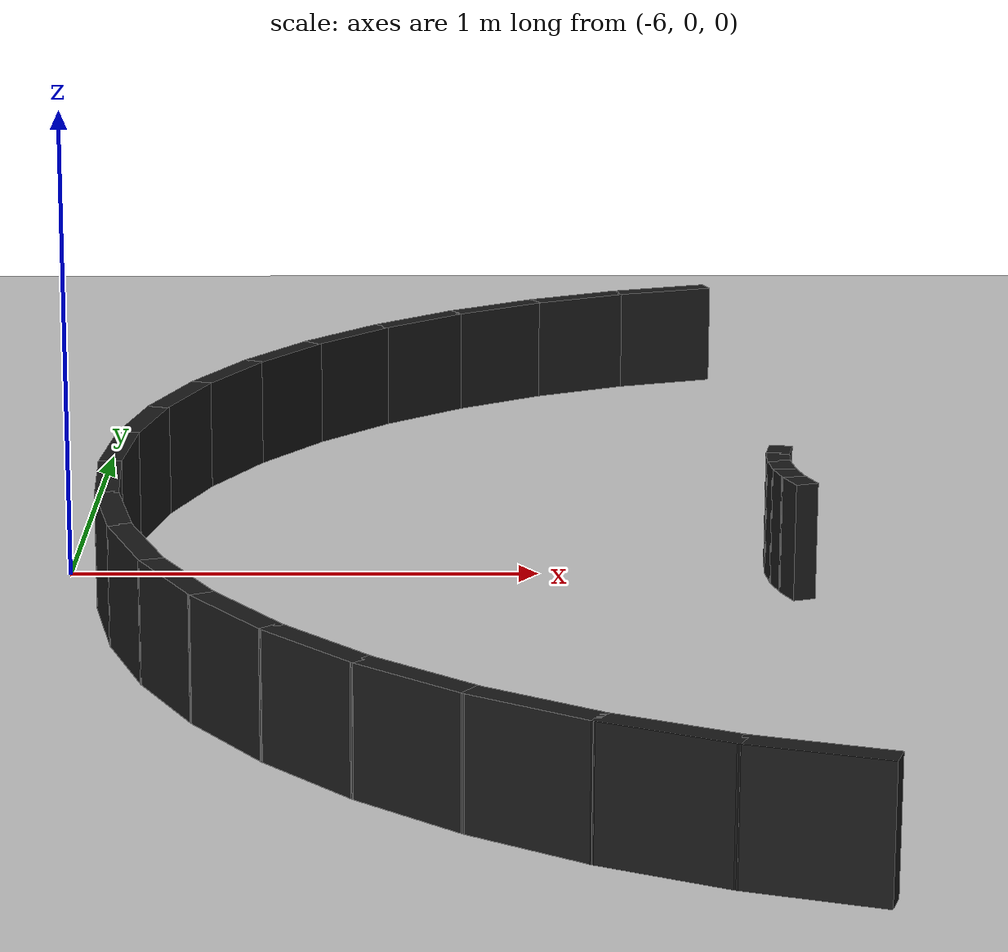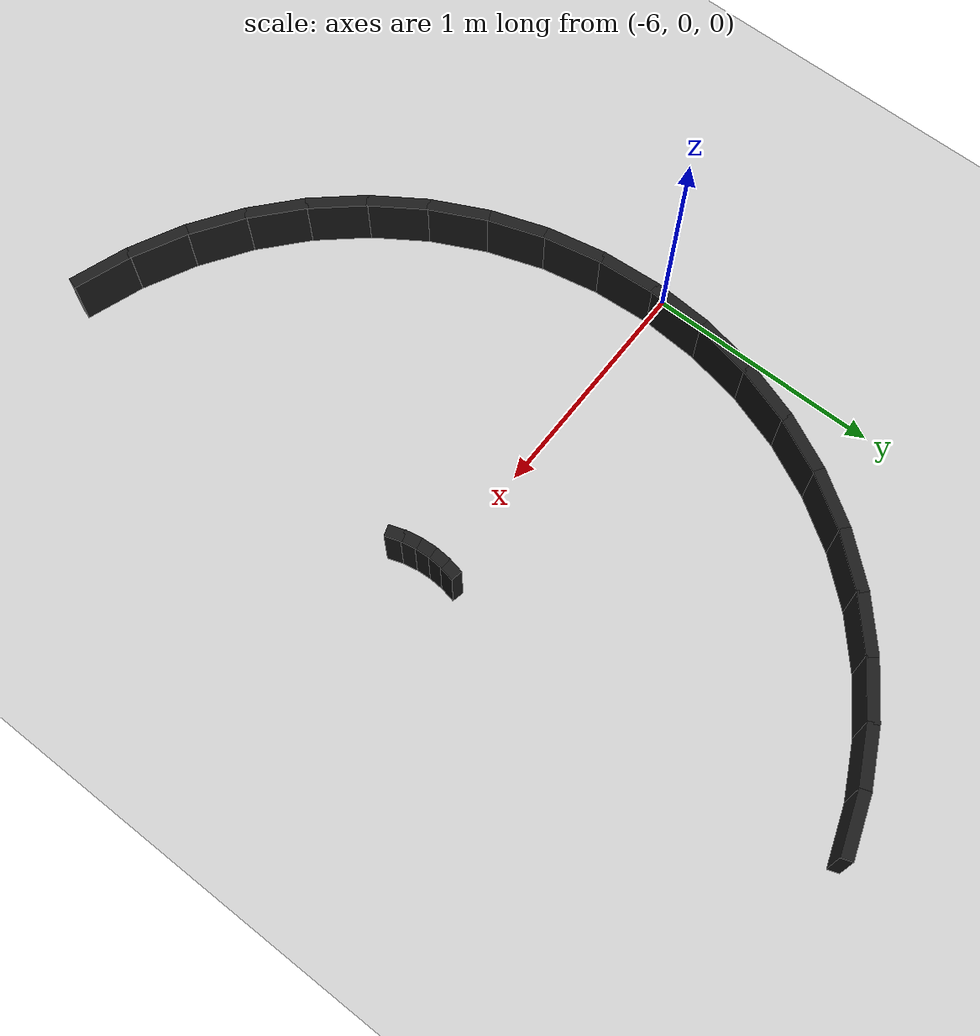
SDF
<sdf version="1.6">
 <world name="button_track">
  <include><uri>model://sun</uri></include>
  <include><uri>model://ground_plane</uri></include>
  <model name="wall_left_outer_50">
   <static>true</static>
   <pose>-4.613020 -1.805898 0.125000 0 0 2.814343</pose>
   <link name="link">
    <collision name="collision">
     <geometry><box><size>0.259997 0.050000 0.250000</size></box></geometry>
    </collision>
    <visual name="visual">
     <geometry><box><size>0.259997 0.050000 0.250000</size></box></geometry>
     <material>
      <ambient>0.1 0.1 0.1 1</ambient>
      <diffuse>0.1 0.1 0.1 1</diffuse>
      <specular>0.2 0.2 0.2 1</specular>
     </material>
    </visual>
   </link>
  </model>
  <model name="wall_left_outer_51">
   <static>true</static>
   <pose>-4.843492 -1.710433 0.125000 0 0 2.683444</pose>
   <link name="link">
    <collision name="collision">
     <geometry><box><size>0.259997 0.050000 0.250000</size></box></geometry>
    </collision>
    <visual name="visual">
     <geometry><box><size>0.259997 0.050000 0.250000</size></box></geometry>
     <material>
      <ambient>0.1 0.1 0.1 1</ambient>
      <diffuse>0.1 0.1 0.1 1</diffuse>
      <specular>0.2 0.2 0.2 1</specular>
     </material>
    </visual>
   </link>
  </model>
  <model name="wall_left_outer_52">
   <static>true</static>
   <pose>-5.059532 -1.585702 0.125000 0 0 2.552544</pose>
   <link name="link">
    <collision name="collision">
     <geometry><box><size>0.259997 0.050000 0.250000</size></box></geometry>
    </collision>
    <visual name="visual">
     <geometry><box><size>0.259997 0.050000 0.250000</size></box></geometry>
     <material>
      <ambient>0.1 0.1 0.1 1</ambient>
      <diffuse>0.1 0.1 0.1 1</diffuse>
      <specular>0.2 0.2 0.2 1</specular>
     </material>
    </visual>
   </link>
  </model>
  <model name="wall_left_outer_53">
   <static>true</static>
   <pose>-5.257444 -1.433840 0.125000 0 0 2.421644</pose>
   <link name="link">
    <collision name="collision">
     <geometry><box><size>0.259997 0.050000 0.250000</size></box></geometry>
    </collision>
    <visual name="visual">
     <geometry><box><size>0.259997 0.050000 0.250000</size></box></geometry>
     <material>
      <ambient>0.1 0.1 0.1 1</ambient>
      <diffuse>0.1 0.1 0.1 1</diffuse>
      <specular>0.2 0.2 0.2 1</specular>
     </material>
    </visual>
   </link>
  </model>
  <model name="wall_left_outer_54">
   <static>true</static>
   <pose>-5.433840 -1.257444 0.125000 0 0 2.290745</pose>
   <link name="link">
    <collision name="collision">
     <geometry><box><size>0.259997 0.050000 0.250000</size></box></geometry>
    </collision>
    <visual name="visual">
     <geometry><box><size>0.259997 0.050000 0.250000</size></box></geometry>
     <material>
      <ambient>0.1 0.1 0.1 1</ambient>
      <diffuse>0.1 0.1 0.1 1</diffuse>
      <specular>0.2 0.2 0.2 1</specular>
     </material>
    </visual>
   </link>
  </model>
  <model name="wall_left_outer_55">
   <static>true</static>
   <pose>-5.585702 -1.059532 0.125000 0 0 2.159845</pose>
   <link name="link">
    <collision name="collision">
     <geometry><box><size>0.259997 0.050000 0.250000</size></box></geometry>
    </collision>
    <visual name="visual">
     <geometry><box><size>0.259997 0.050000 0.250000</size></box></geometry>
     <material>
      <ambient>0.1 0.1 0.1 1</ambient>
      <diffuse>0.1 0.1 0.1 1</diffuse>
      <specular>0.2 0.2 0.2 1</specular>
     </material>
    </visual>
   </link>
  </model>
  <model name="wall_left_outer_56">
   <static>true</static>
   <pose>-5.710433 -0.843492 0.125000 0 0 2.028945</pose>
   <link name="link">
    <collision name="collision">
     <geometry><box><size>0.259997 0.050000 0.250000</size></box></geometry>
    </collision>
    <visual name="visual">
     <geometry><box><size>0.259997 0.050000 0.250000</size></box></geometry>
     <material>
      <ambient>0.1 0.1 0.1 1</ambient>
      <diffuse>0.1 0.1 0.1 1</diffuse>
      <specular>0.2 0.2 0.2 1</specular>
     </material>
    </visual>
   </link>
  </model>
  <model name="wall_left_outer_57">
   <static>true</static>
   <pose>-5.805898 -0.613020 0.125000 0 0 1.898046</pose>
   <link name="link">
    <collision name="collision">
     <geometry><box><size>0.259997 0.050000 0.250000</size></box></geometry>
    </collision>
    <visual name="visual">
     <geometry><box><size>0.259997 0.050000 0.250000</size></box></geometry>
     <material>
      <ambient>0.1 0.1 0.1 1</ambient>
      <diffuse>0.1 0.1 0.1 1</diffuse>
      <specular>0.2 0.2 0.2 1</specular>
     </material>
    </visual>
   </link>
  </model>
  <model name="wall_left_outer_58">
   <static>true</static>
   <pose>-5.870463 -0.372058 0.125000 0 0 1.767146</pose>
   <link name="link">
    <collision name="collision">
     <geometry><box><size>0.259997 0.050000 0.250000</size></box></geometry>
    </collision>
    <visual name="visual">
     <geometry><box><size>0.259997 0.050000 0.250000</size></box></geometry>
     <material>
      <ambient>0.1 0.1 0.1 1</ambient>
      <diffuse>0.1 0.1 0.1 1</diffuse>
      <specular>0.2 0.2 0.2 1</specular>
     </material>
    </visual>
   </link>
  </model>
  <model name="wall_left_outer_59">
   <static>true</static>
   <pose>-5.903025 -0.124731 0.125000 0 0 1.636246</pose>
   <link name="link">
    <collision name="collision">
     <geometry><box><size>0.259997 0.050000 0.250000</size></box></geometry>
    </collision>
    <visual name="visual">
     <geometry><box><size>0.259997 0.050000 0.250000</size></box></geometry>
     <material>
      <ambient>0.1 0.1 0.1 1</ambient>
      <diffuse>0.1 0.1 0.1 1</diffuse>
      <specular>0.2 0.2 0.2 1</specular>
     </material>
    </visual>
   </link>
  </model>
  <model name="wall_left_outer_60">
   <static>true</static>
   <pose>-5.903025 0.124731 0.125000 0 0 1.505346</pose>
   <link name="link">
    <collision name="collision">
     <geometry><box><size>0.259997 0.050000 0.250000</size></box></geometry>
    </collision>
    <visual name="visual">
     <geometry><box><size>0.259997 0.050000 0.250000</size></box></geometry>
     <material>
      <ambient>0.1 0.1 0.1 1</ambient>
      <diffuse>0.1 0.1 0.1 1</diffuse>
      <specular>0.2 0.2 0.2 1</specular>
     </material>
    </visual>
   </link>
  </model>
  <model name="wall_left_outer_61">
   <static>true</static>
   <pose>-5.870463 0.372058 0.125000 0 0 1.374447</pose>
   <link name="link">
    <collision name="collision">
     <geometry><box><size>0.259997 0.050000 0.250000</size></box></geometry>
    </collision>
    <visual name="visual">
     <geometry><box><size>0.259997 0.050000 0.250000</size></box></geometry>
     <material>
      <ambient>0.1 0.1 0.1 1</ambient>
      <diffuse>0.1 0.1 0.1 1</diffuse>
      <specular>0.2 0.2 0.2 1</specular>
     </material>
    </visual>
   </link>
  </model>
  <model name="wall_left_outer_62">
   <static>true</static>
   <pose>-5.805898 0.613020 0.125000 0 0 1.243547</pose>
   <link name="link">
    <collision name="collision">
     <geometry><box><size>0.259997 0.050000 0.250000</size></box></geometry>
    </collision>
    <visual name="visual">
     <geometry><box><size>0.259997 0.050000 0.250000</size></box></geometry>
     <material>
      <ambient>0.1 0.1 0.1 1</ambient>
      <diffuse>0.1 0.1 0.1 1</diffuse>
      <specular>0.2 0.2 0.2 1</specular>
     </material>
    </visual>
   </link>
  </model>
  <model name="wall_left_outer_63">
   <static>true</static>
   <pose>-5.710433 0.843492 0.125000 0 0 1.112647</pose>
   <link name="link">
    <collision name="collision">
     <geometry><box><size>0.259997 0.050000 0.250000</size></box></geometry>
    </collision>
    <visual name="visual">
     <geometry><box><size>0.259997 0.050000 0.250000</size></box></geometry>
     <material>
      <ambient>0.1 0.1 0.1 1</ambient>
      <diffuse>0.1 0.1 0.1 1</diffuse>
      <specular>0.2 0.2 0.2 1</specular>
     </material>
    </visual>
   </link>
  </model>
  <model name="wall_left_outer_64">
   <static>true</static>
   <pose>-5.585702 1.059532 0.125000 0 0 0.981748</pose>
   <link name="link">
    <collision name="collision">
     <geometry><box><size>0.259997 0.050000 0.250000</size></box></geometry>
    </collision>
    <visual name="visual">
     <geometry><box><size>0.259997 0.050000 0.250000</size></box></geometry>
     <material>
      <ambient>0.1 0.1 0.1 1</ambient>
      <diffuse>0.1 0.1 0.1 1</diffuse>
      <specular>0.2 0.2 0.2 1</specular>
     </material>
    </visual>
   </link>
  </model>
  <model name="wall_left_outer_65">
   <static>true</static>
   <pose>-5.433840 1.257444 0.125000 0 0 0.850848</pose>
   <link name="link">
    <collision name="collision">
     <geometry><box><size>0.259997 0.050000 0.250000</size></box></geometry>
    </collision>
    <visual name="visual">
     <geometry><box><size>0.259997 0.050000 0.250000</size></box></geometry>
     <material>
      <ambient>0.1 0.1 0.1 1</ambient>
      <diffuse>0.1 0.1 0.1 1</diffuse>
      <specular>0.2 0.2 0.2 1</specular>
     </material>
    </visual>
   </link>
  </model>
  <model name="wall_left_outer_66">
   <static>true</static>
   <pose>-5.257444 1.433840 0.125000 0 0 0.719948</pose>
   <link name="link">
    <collision name="collision">
     <geometry><box><size>0.259997 0.050000 0.250000</size></box></geometry>
    </collision>
    <visual name="visual">
     <geometry><box><size>0.259997 0.050000 0.250000</size></box></geometry>
     <material>
      <ambient>0.1 0.1 0.1 1</ambient>
      <diffuse>0.1 0.1 0.1 1</diffuse>
      <specular>0.2 0.2 0.2 1</specular>
     </material>
    </visual>
   </link>
  </model>
  <model name="wall_left_outer_67">
   <static>true</static>
   <pose>-5.059532 1.585702 0.125000 0 0 0.589049</pose>
   <link name="link">
    <collision name="collision">
     <geometry><box><size>0.259997 0.050000 0.250000</size></box></geometry>
    </collision>
    <visual name="visual">
     <geometry><box><size>0.259997 0.050000 0.250000</size></box></geometry>
     <material>
      <ambient>0.1 0.1 0.1 1</ambient>
      <diffuse>0.1 0.1 0.1 1</diffuse>
      <specular>0.2 0.2 0.2 1</specular>
     </material>
    </visual>
   </link>
  </model>
  <model name="wall_left_outer_68">
   <static>true</static>
   <pose>-4.843492 1.710433 0.125000 0 0 0.458149</pose>
   <link name="link">
    <collision name="collision">
     <geometry><box><size>0.259997 0.050000 0.250000</size></box></geometry>
    </collision>
    <visual name="visual">
     <geometry><box><size>0.259997 0.050000 0.250000</size></box></geometry>
     <material>
      <ambient>0.1 0.1 0.1 1</ambient>
      <diffuse>0.1 0.1 0.1 1</diffuse>
      <specular>0.2 0.2 0.2 1</specular>
     </material>
    </visual>
   </link>
  </model>
  <model name="wall_left_outer_69">
   <static>true</static>
   <pose>-4.613020 1.805898 0.125000 0 0 0.327249</pose>
   <link name="link">
    <collision name="collision">
     <geometry><box><size>0.259997 0.050000 0.250000</size></box></geometry>
    </collision>
    <visual name="visual">
     <geometry><box><size>0.259997 0.050000 0.250000</size></box></geometry>
     <material>
      <ambient>0.1 0.1 0.1 1</ambient>
      <diffuse>0.1 0.1 0.1 1</diffuse>
      <specular>0.2 0.2 0.2 1</specular>
     </material>
    </visual>
   </link>
  </model>
  <model name="wall_left_inner_81">
   <static>true</static>
   <pose>-4.461868 -0.156783 0.125000 0 0 1.898046</pose>
   <link name="link">
    <collision name="collision">
     <geometry><box><size>0.073938 0.050000 0.250000</size></box></geometry>
    </collision>
    <visual name="visual">
     <geometry><box><size>0.073938 0.050000 0.250000</size></box></geometry>
     <material>
      <ambient>0.1 0.1 0.1 1</ambient>
      <diffuse>0.1 0.1 0.1 1</diffuse>
      <specular>0.2 0.2 0.2 1</specular>
     </material>
    </visual>
   </link>
  </model>
  <model name="wall_left_inner_82">
   <static>true</static>
   <pose>-4.478381 -0.095156 0.125000 0 0 1.767146</pose>
   <link name="link">
    <collision name="collision">
     <geometry><box><size>0.073938 0.050000 0.250000</size></box></geometry>
    </collision>
    <visual name="visual">
     <geometry><box><size>0.073938 0.050000 0.250000</size></box></geometry>
     <material>
      <ambient>0.1 0.1 0.1 1</ambient>
      <diffuse>0.1 0.1 0.1 1</diffuse>
      <specular>0.2 0.2 0.2 1</specular>
     </material>
    </visual>
   </link>
  </model>
  <model name="wall_left_inner_83">
   <static>true</static>
   <pose>-4.486709 -0.031901 0.125000 0 0 1.636246</pose>
   <link name="link">
    <collision name="collision">
     <geometry><box><size>0.073938 0.050000 0.250000</size></box></geometry>
    </collision>
    <visual name="visual">
     <geometry><box><size>0.073938 0.050000 0.250000</size></box></geometry>
     <material>
      <ambient>0.1 0.1 0.1 1</ambient>
      <diffuse>0.1 0.1 0.1 1</diffuse>
      <specular>0.2 0.2 0.2 1</specular>
     </material>
    </visual>
   </link>
  </model>
  <model name="wall_left_inner_84">
   <static>true</static>
   <pose>-4.486709 0.031901 0.125000 0 0 1.505346</pose>
   <link name="link">
    <collision name="collision">
     <geometry><box><size>0.073938 0.050000 0.250000</size></box></geometry>
    </collision>
    <visual name="visual">
     <geometry><box><size>0.073938 0.050000 0.250000</size></box></geometry>
     <material>
      <ambient>0.1 0.1 0.1 1</ambient>
      <diffuse>0.1 0.1 0.1 1</diffuse>
      <specular>0.2 0.2 0.2 1</specular>
     </material>
    </visual>
   </link>
  </model>
  <model name="wall_left_inner_85">
   <static>true</static>
   <pose>-4.478381 0.095156 0.125000 0 0 1.374447</pose>
   <link name="link">
    <collision name="collision">
     <geometry><box><size>0.073938 0.050000 0.250000</size></box></geometry>
    </collision>
    <visual name="visual">
     <geometry><box><size>0.073938 0.050000 0.250000</size></box></geometry>
     <material>
      <ambient>0.1 0.1 0.1 1</ambient>
      <diffuse>0.1 0.1 0.1 1</diffuse>
      <specular>0.2 0.2 0.2 1</specular>
     </material>
    </visual>
   </link>
  </model>
 </world>
</sdf>
